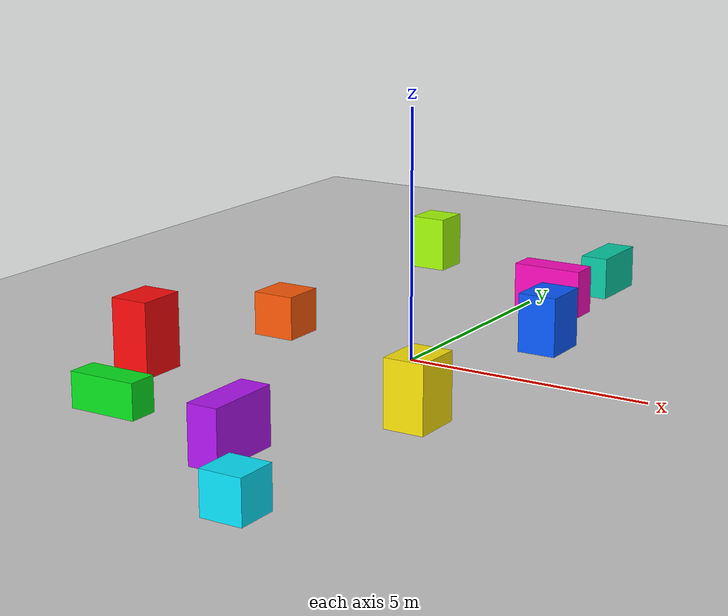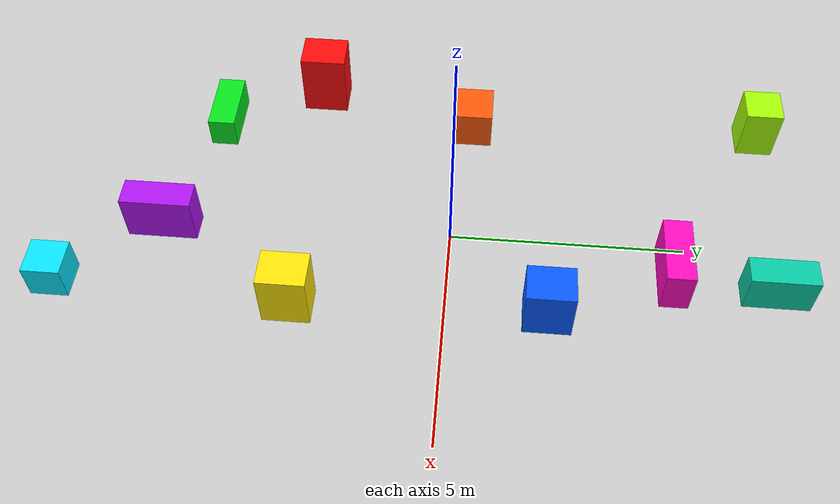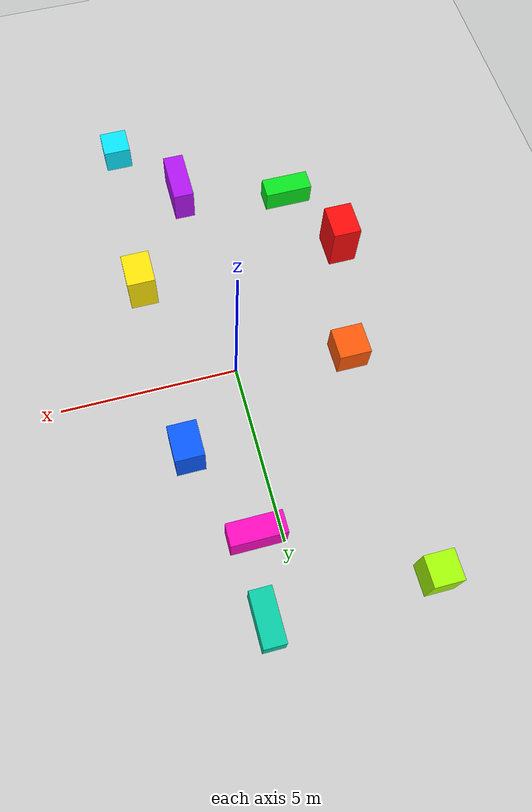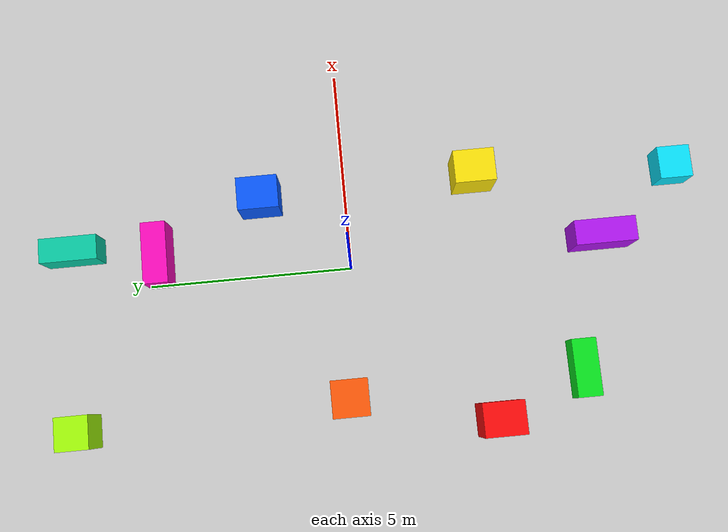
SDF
<sdf version="1.6">
 <world name="default">
  <model name="lidar_box_west_orange">
   <static>true</static>
   <pose>-3.2 0.3 0.45 0 0 0</pose>
   <link name="lidar_box_west_orange_link">
    <collision name="lidar_box_west_orange_collision">
     <geometry><box><size>0.9 0.9 0.9</size></box></geometry>
    </collision>
    <visual name="lidar_box_west_orange_visual">
     <geometry><box><size>0.9 0.9 0.9</size></box></geometry>
     <material>
      <ambient>1.0 0.25 0.02 1</ambient>
      <diffuse>1.0 0.35 0.03 1</diffuse>
      <specular>0.2 0.2 0.2 1</specular>
     </material>
    </visual>
   </link>
  </model>
  <model name="lidar_box_northeast_blue">
   <static>true</static>
   <pose>1.9 2.1 0.6 0 0 0</pose>
   <link name="lidar_box_northeast_blue_link">
    <collision name="lidar_box_northeast_blue_collision">
     <geometry><box><size>0.8 1.0 1.2</size></box></geometry>
    </collision>
    <visual name="lidar_box_northeast_blue_visual">
     <geometry><box><size>0.8 1.0 1.2</size></box></geometry>
     <material>
      <ambient>0.02 0.20 0.95 1</ambient>
      <diffuse>0.03 0.35 1.0 1</diffuse>
      <specular>0.2 0.2 0.2 1</specular>
     </material>
    </visual>
   </link>
  </model>
  <model name="wide_passage_west_red">
   <static>true</static>
   <pose>-4.0 -3.2 0.75 0 0 0</pose>
   <link name="wide_passage_west_red_link">
    <collision name="wide_passage_west_red_collision">
     <geometry><box><size>0.8 1.0 1.5</size></box></geometry>
    </collision>
    <visual name="wide_passage_west_red_visual">
     <geometry><box><size>0.8 1.0 1.5</size></box></geometry>
     <material>
      <ambient>0.85 0.02 0.02 1</ambient>
      <diffuse>1.0 0.04 0.04 1</diffuse>
      <specular>0.2 0.2 0.2 1</specular>
     </material>
    </visual>
   </link>
  </model>
  <model name="wide_passage_east_yellow">
   <static>true</static>
   <pose>2.05 -3.2 0.65 0 0 0</pose>
   <link name="wide_passage_east_yellow_link">
    <collision name="wide_passage_east_yellow_collision">
     <geometry><box><size>0.8 1.0 1.3</size></box></geometry>
    </collision>
    <visual name="wide_passage_east_yellow_visual">
     <geometry><box><size>0.8 1.0 1.3</size></box></geometry>
     <material>
      <ambient>0.95 0.75 0.02 1</ambient>
      <diffuse>1.0 0.90 0.03 1</diffuse>
      <specular>0.2 0.2 0.2 1</specular>
     </material>
    </visual>
   </link>
  </model>
  <model name="offset_barrier_southwest_green">
   <static>true</static>
   <pose>-3.0 -5.4 0.35 0 0 0</pose>
   <link name="offset_barrier_southwest_green_link">
    <collision name="offset_barrier_southwest_green_collision">
     <geometry><box><size>1.4 0.6 0.7</size></box></geometry>
    </collision>
    <visual name="offset_barrier_southwest_green_visual">
     <geometry><box><size>1.4 0.6 0.7</size></box></geometry>
     <material>
      <ambient>0.02 0.65 0.08 1</ambient>
      <diffuse>0.03 0.90 0.12 1</diffuse>
      <specular>0.2 0.2 0.2 1</specular>
     </material>
    </visual>
   </link>
  </model>
  <model name="offset_barrier_southcentral_purple">
   <static>true</static>
   <pose>0.2 -6.2 0.55 0 0 0</pose>
   <link name="offset_barrier_southcentral_purple_link">
    <collision name="offset_barrier_southcentral_purple_collision">
     <geometry><box><size>0.6 1.5 1.1</size></box></geometry>
    </collision>
    <visual name="offset_barrier_southcentral_purple_visual">
     <geometry><box><size>0.6 1.5 1.1</size></box></geometry>
     <material>
      <ambient>0.50 0.04 0.75 1</ambient>
      <diffuse>0.70 0.08 0.95 1</diffuse>
      <specular>0.2 0.2 0.2 1</specular>
     </material>
    </visual>
   </link>
  </model>
  <model name="lidar_cube_southeast_cyan">
   <static>true</static>
   <pose>1.8 -8.2 0.4 0 0 0</pose>
   <link name="lidar_cube_southeast_cyan_link">
    <collision name="lidar_cube_southeast_cyan_collision">
     <geometry><box><size>0.8 0.8 0.8</size></box></geometry>
    </collision>
    <visual name="lidar_cube_southeast_cyan_visual">
     <geometry><box><size>0.8 0.8 0.8</size></box></geometry>
     <material>
      <ambient>0.02 0.70 0.80 1</ambient>
      <diffuse>0.03 0.90 1.0 1</diffuse>
      <specular>0.2 0.2 0.2 1</specular>
     </material>
    </visual>
   </link>
  </model>
  <model name="offset_barrier_upper_magenta">
   <static>true</static>
   <pose>0.7 4.7 0.5 0 0 0</pose>
   <link name="offset_barrier_upper_magenta_link">
    <collision name="offset_barrier_upper_magenta_collision">
     <geometry><box><size>1.5 0.6 1.0</size></box></geometry>
    </collision>
    <visual name="offset_barrier_upper_magenta_visual">
     <geometry><box><size>1.5 0.6 1.0</size></box></geometry>
     <material>
      <ambient>0.80 0.02 0.55 1</ambient>
      <diffuse>1.0 0.04 0.75 1</diffuse>
      <specular>0.2 0.2 0.2 1</specular>
     </material>
    </visual>
   </link>
  </model>
  <model name="lidar_cube_upper_west_lime">
   <static>true</static>
   <pose>-3.4 6.8 0.6 0 0 0</pose>
   <link name="lidar_cube_upper_west_lime_link">
    <collision name="lidar_cube_upper_west_lime_collision">
     <geometry><box><size>0.8 0.8 1.2</size></box></geometry>
    </collision>
    <visual name="lidar_cube_upper_west_lime_visual">
     <geometry><box><size>0.8 0.8 1.2</size></box></geometry>
     <material>
      <ambient>0.50 0.85 0.02 1</ambient>
      <diffuse>0.65 1.0 0.03 1</diffuse>
      <specular>0.2 0.2 0.2 1</specular>
     </material>
    </visual>
   </link>
  </model>
  <model name="lidar_barrier_upper_center_teal">
   <static>true</static>
   <pose>1.0 6.8 0.45 0 0 0</pose>
   <link name="lidar_barrier_upper_center_teal_link">
    <collision name="lidar_barrier_upper_center_teal_collision">
     <geometry><box><size>0.6 1.4 0.9</size></box></geometry>
    </collision>
    <visual name="lidar_barrier_upper_center_teal_visual">
     <geometry><box><size>0.6 1.4 0.9</size></box></geometry>
     <material>
      <ambient>0.02 0.55 0.45 1</ambient>
      <diffuse>0.03 0.80 0.65 1</diffuse>
      <specular>0.2 0.2 0.2 1</specular>
     </material>
    </visual>
   </link>
  </model>
  <light name="Warehouse_CeilingLight_003" type="point">
   <pose>0 0 9 0 0 0</pose>
   <diffuse>0.5 0.5 0.5 1</diffuse>
   <specular>0.2 0.2 0.2 1</specular>
   <attenuation>
    <range>800</range>
    <constant>0.2</constant>
    <linear>0.01</linear>
    <quadratic>0.001</quadratic>
   </attenuation>
   <direction>0.1 0.1 -1</direction>
  </light>
  <light type="directional" name="sun">
   <pose>0 0 10 0 0 0</pose>
   <diffuse>0.8 0.8 0.8 1</diffuse>
   <specular>0.2 0.2 0.2 1</specular>
   <attenuation>
    <range>1000</range>
    <constant>0.9</constant>
    <linear>0.01</linear>
    <quadratic>0.001</quadratic>
   </attenuation>
   <direction>-0.5 0.1 -0.9</direction>
  </light>
  <model name="ground_plane">
   <static>true</static>
   <link name="link">
    <collision name="collision"><geometry><plane><normal>0 0 1</normal></plane></geometry></collision>
    <visual name="visual">
     <geometry><plane><normal>0 0 1</normal><size>100 100</size></plane></geometry>
     <material>
      <ambient>0.8 0.8 0.8 1</ambient>
      <diffuse>0.8 0.8 0.8 1</diffuse>
      <specular>0.8 0.8 0.8 1</specular>
     </material>
    </visual>
   </link>
  </model>
 </world>
</sdf>
